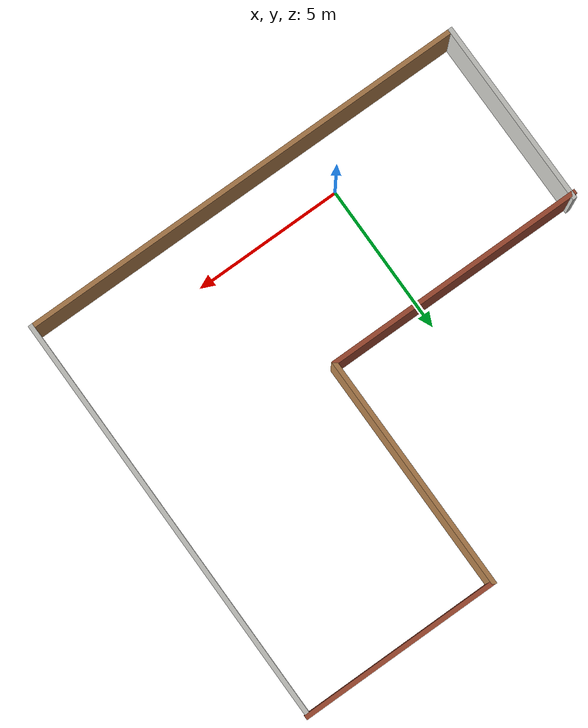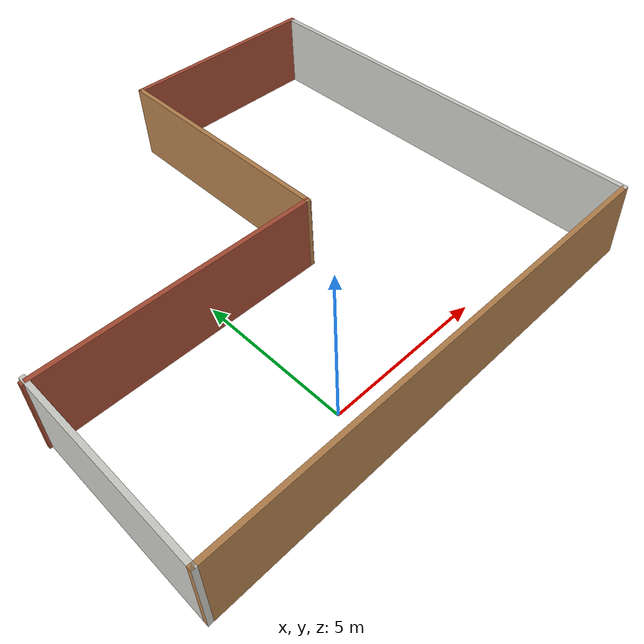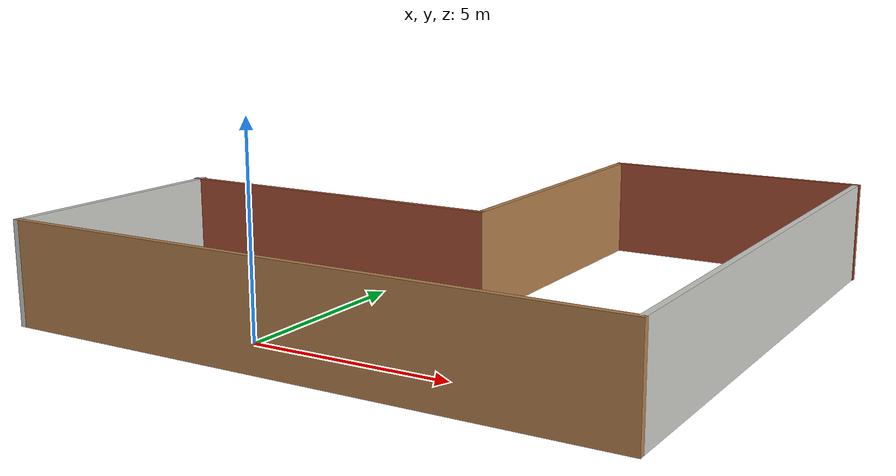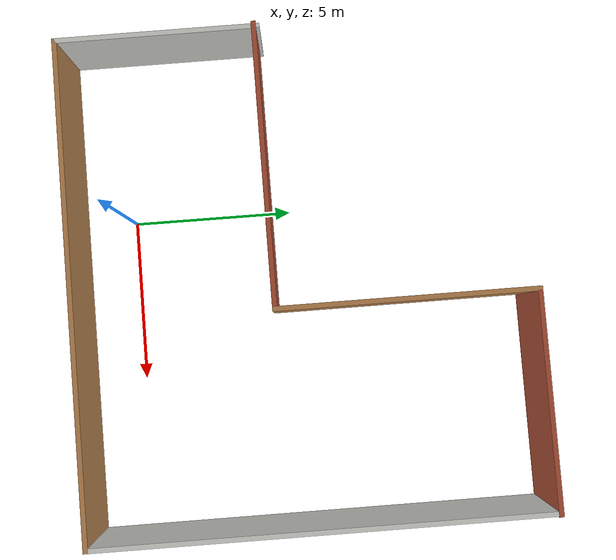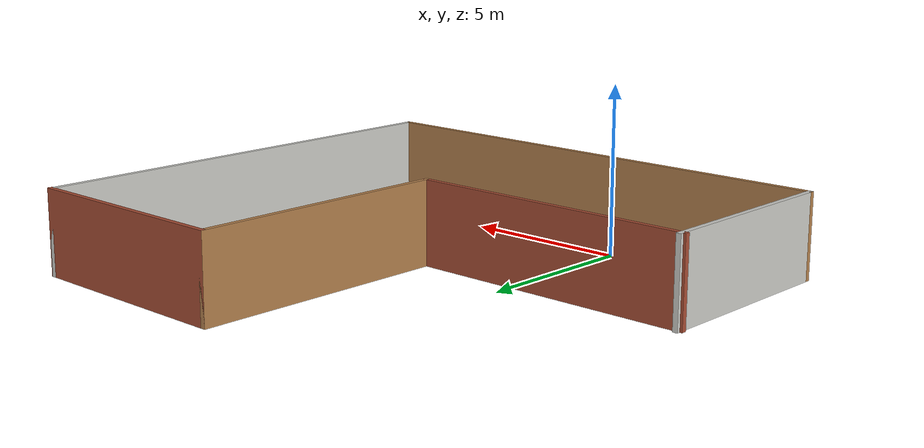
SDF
<?xml version='1.0'?>
<sdf version='1.7'>
  <model name='hummingbird_world'>
    <pose>2.18058 5.29706 0 0 -0 0</pose>
    <link name='Wall_10'>
      <collision name='Wall_10_Collision'>
        <geometry>
          <box>
            <size>14 0.15 2.5</size>
          </box>
        </geometry>
        <pose>0 0 1.25 0 -0 0</pose>
      </collision>
      <visual name='Wall_10_Visual'>
        <pose>0 0 1.25 0 -0 0</pose>
        <geometry>
          <box>
            <size>14 0.15 2.5</size>
          </box>
        </geometry>
        <material>
          <script>
            <uri>file://media/materials/scripts/gazebo.material</uri>
            <name>Gazebo/CeilingTiled</name>
          </script>
          <ambient>0.447059 0.623529 0.811765 1</ambient>
        </material>
        <meta>
          <layer>0</layer>
        </meta>
      </visual>
      <pose>7.5734 -0 0 0 -0 -1.5708</pose>
    </link>
    <link name='Wall_13'>
      <collision name='Wall_13_Collision'>
        <geometry>
          <box>
            <size>15.25 0.15 2.5</size>
          </box>
        </geometry>
        <pose>0 0 1.25 0 -0 0</pose>
      </collision>
      <visual name='Wall_13_Visual'>
        <pose>0 0 1.25 0 -0 0</pose>
        <geometry>
          <box>
            <size>15.25 0.15 2.5</size>
          </box>
        </geometry>
        <material>
          <script>
            <uri>file://media/materials/scripts/gazebo.material</uri>
            <name>Gazebo/Wood</name>
          </script>
          <ambient>1 1 1 1</ambient>
        </material>
        <meta>
          <layer>0</layer>
        </meta>
      </visual>
      <pose>0.0234 -6.925 0 0 -0 3.14159</pose>
    </link>
    <link name='Wall_14'>
      <collision name='Wall_14_Collision'>
        <geometry>
          <box>
            <size>6.25 0.15 2.5</size>
          </box>
        </geometry>
        <pose>0 0 1.25 0 -0 0</pose>
      </collision>
      <visual name='Wall_14_Visual'>
        <pose>0 0 1.25 0 -0 0</pose>
        <geometry>
          <box>
            <size>6.25 0.15 2.5</size>
          </box>
        </geometry>
        <material>
          <script>
            <uri>file://media/materials/scripts/gazebo.material</uri>
            <name>Gazebo/CeilingTiled</name>
          </script>
          <ambient>1 1 1 1</ambient>
        </material>
        <meta>
          <layer>0</layer>
        </meta>
      </visual>
      <pose>-7.5266 -3.875 0 0 -0 1.5708</pose>
    </link>
    <link name='Wall_6'>
      <collision name='Wall_6_Collision'>
        <geometry>
          <box>
            <size>8.75 0.15 2.5</size>
          </box>
        </geometry>
        <pose>0 0 1.25 0 -0 0</pose>
      </collision>
      <visual name='Wall_6_Visual'>
        <pose>0 0 1.25 0 -0 0</pose>
        <geometry>
          <box>
            <size>8.75 0.15 2.5</size>
          </box>
        </geometry>
        <material>
          <script>
            <uri>file://media/materials/scripts/gazebo.material</uri>
            <name>Gazebo/Bricks</name>
          </script>
          <ambient>1 1 1 1</ambient>
        </material>
        <meta>
          <layer>0</layer>
        </meta>
      </visual>
      <pose>-3.3 -0.925 0 0 -0 0</pose>
    </link>
    <link name='Wall_7'>
      <collision name='Wall_7_Collision'>
        <geometry>
          <box>
            <size>8 0.15 2.5</size>
          </box>
        </geometry>
        <pose>0 0 1.25 0 -0 0</pose>
      </collision>
      <visual name='Wall_7_Visual'>
        <pose>0 0 1.25 0 -0 0</pose>
        <geometry>
          <box>
            <size>8 0.15 2.5</size>
          </box>
        </geometry>
        <material>
          <script>
            <uri>file://media/materials/scripts/gazebo.material</uri>
            <name>Gazebo/Wood</name>
          </script>
          <ambient>1 1 1 1</ambient>
        </material>
        <meta>
          <layer>0</layer>
        </meta>
      </visual>
      <pose>1 3 0 0 -0 1.5708</pose>
    </link>
    <link name='Wall_9'>
      <collision name='Wall_9_Collision'>
        <geometry>
          <box>
            <size>6.75 0.15 2.5</size>
          </box>
        </geometry>
        <pose>0 0 1.25 0 -0 0</pose>
      </collision>
      <visual name='Wall_9_Visual'>
        <pose>0 0 1.25 0 -0 0</pose>
        <geometry>
          <box>
            <size>6.75 0.15 2.5</size>
          </box>
        </geometry>
        <material>
          <script>
            <uri>file://media/materials/scripts/gazebo.material</uri>
            <name>Gazebo/Bricks</name>
          </script>
          <ambient>1 1 1 1</ambient>
        </material>
        <meta>
          <layer>0</layer>
        </meta>
      </visual>
      <pose>4.3 6.925 0 0 -0 0</pose>
    </link>
    <static>1</static>
  </model>
</sdf>
